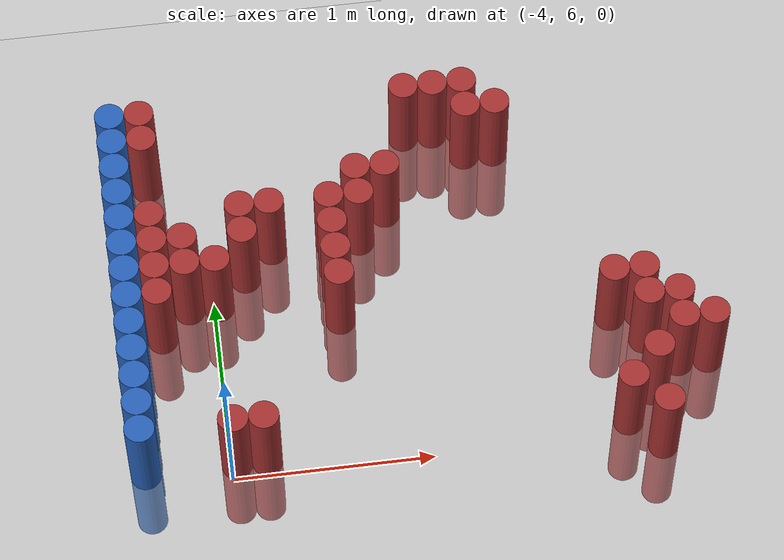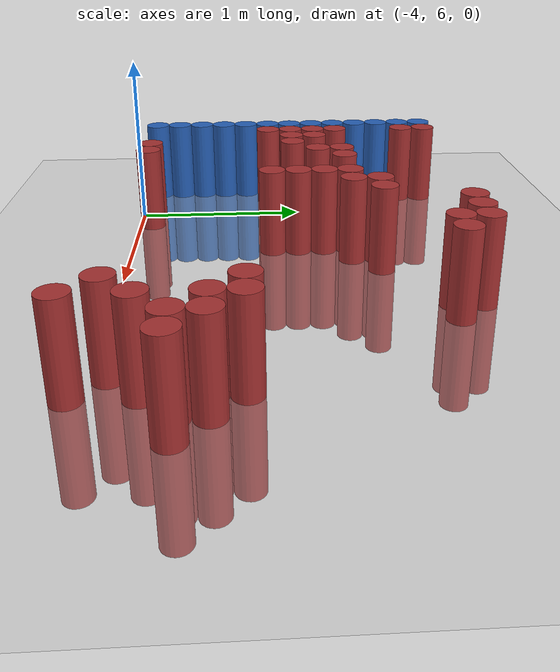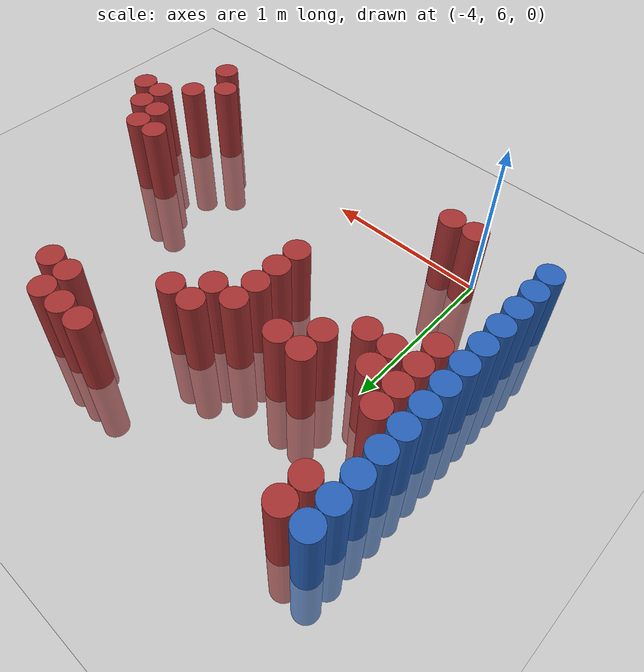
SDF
<sdf version="1.6">
 <world name="default">
  <model name="ground_plane">
   <static>1</static>
   <link name="link">
    <collision name="collision">
     <geometry><plane><normal>0 0 1</normal><size>100 100</size></plane></geometry>
     <surface><friction><ode><mu>100</mu><mu2>50</mu2></ode></friction></surface>
    </collision>
    <visual name="visual">
     <cast_shadows>0</cast_shadows>
     <geometry><plane><normal>0 0 1</normal><size>100 100</size></plane></geometry>
     <material>
      <script><uri>file://media/materials/scripts/gazebo.material</uri><name>Gazebo/Grey</name></script>
     </material>
    </visual>
   </link>
  </model>
  <model name="unit_cylinder_102">
   <static>1</static>
   <pose>-4.425000 6.075000 0.000000 0.000000 0.000000 0.000000</pose>
   <link name="link">
    <inertial>
     <mass>1</mass>
     <inertia><ixx>0.145833</ixx><ixy>0</ixy><ixz>0</ixz><iyy>0.145833</iyy><iyz>0</iyz><izz>0.125</izz></inertia>
    </inertial>
    <collision name="collision">
     <geometry><cylinder><radius>0.075000</radius><length>1</length></cylinder></geometry>
    </collision>
    <visual name="visual">
     <geometry><cylinder><radius>0.075000</radius><length>1</length></cylinder></geometry>
     <material>
      <ambient>0.152000 0.379000 0.720000 1</ambient>
      <diffuse>0.152000 0.379000 0.720000 1</diffuse>
     </material>
     <material>
      <script><name>Gazebo/Grey</name><uri>file://media/materials/scripts/gazebo.material</uri></script>
     </material>
    </visual>
   </link>
  </model>
  <model name="unit_cylinder_103">
   <static>1</static>
   <pose>-4.425000 6.225000 0.000000 0.000000 0.000000 0.000000</pose>
   <link name="link">
    <inertial>
     <mass>1</mass>
     <inertia><ixx>0.145833</ixx><ixy>0</ixy><ixz>0</ixz><iyy>0.145833</iyy><iyz>0</iyz><izz>0.125</izz></inertia>
    </inertial>
    <collision name="collision">
     <geometry><cylinder><radius>0.075000</radius><length>1</length></cylinder></geometry>
    </collision>
    <visual name="visual">
     <geometry><cylinder><radius>0.075000</radius><length>1</length></cylinder></geometry>
     <material>
      <ambient>0.152000 0.379000 0.720000 1</ambient>
      <diffuse>0.152000 0.379000 0.720000 1</diffuse>
     </material>
     <material>
      <script><name>Gazebo/Grey</name><uri>file://media/materials/scripts/gazebo.material</uri></script>
     </material>
    </visual>
   </link>
  </model>
  <model name="unit_cylinder_104">
   <static>1</static>
   <pose>-4.425000 6.375000 0.000000 0.000000 0.000000 0.000000</pose>
   <link name="link">
    <inertial>
     <mass>1</mass>
     <inertia><ixx>0.145833</ixx><ixy>0</ixy><ixz>0</ixz><iyy>0.145833</iyy><iyz>0</iyz><izz>0.125</izz></inertia>
    </inertial>
    <collision name="collision">
     <geometry><cylinder><radius>0.075000</radius><length>1</length></cylinder></geometry>
    </collision>
    <visual name="visual">
     <geometry><cylinder><radius>0.075000</radius><length>1</length></cylinder></geometry>
     <material>
      <ambient>0.152000 0.379000 0.720000 1</ambient>
      <diffuse>0.152000 0.379000 0.720000 1</diffuse>
     </material>
     <material>
      <script><name>Gazebo/Grey</name><uri>file://media/materials/scripts/gazebo.material</uri></script>
     </material>
    </visual>
   </link>
  </model>
  <model name="unit_cylinder_105">
   <static>1</static>
   <pose>-4.425000 6.525000 0.000000 0.000000 0.000000 0.000000</pose>
   <link name="link">
    <inertial>
     <mass>1</mass>
     <inertia><ixx>0.145833</ixx><ixy>0</ixy><ixz>0</ixz><iyy>0.145833</iyy><iyz>0</iyz><izz>0.125</izz></inertia>
    </inertial>
    <collision name="collision">
     <geometry><cylinder><radius>0.075000</radius><length>1</length></cylinder></geometry>
    </collision>
    <visual name="visual">
     <geometry><cylinder><radius>0.075000</radius><length>1</length></cylinder></geometry>
     <material>
      <ambient>0.152000 0.379000 0.720000 1</ambient>
      <diffuse>0.152000 0.379000 0.720000 1</diffuse>
     </material>
     <material>
      <script><name>Gazebo/Grey</name><uri>file://media/materials/scripts/gazebo.material</uri></script>
     </material>
    </visual>
   </link>
  </model>
  <model name="unit_cylinder_106">
   <static>1</static>
   <pose>-4.425000 6.675000 0.000000 0.000000 0.000000 0.000000</pose>
   <link name="link">
    <inertial>
     <mass>1</mass>
     <inertia><ixx>0.145833</ixx><ixy>0</ixy><ixz>0</ixz><iyy>0.145833</iyy><iyz>0</iyz><izz>0.125</izz></inertia>
    </inertial>
    <collision name="collision">
     <geometry><cylinder><radius>0.075000</radius><length>1</length></cylinder></geometry>
    </collision>
    <visual name="visual">
     <geometry><cylinder><radius>0.075000</radius><length>1</length></cylinder></geometry>
     <material>
      <ambient>0.152000 0.379000 0.720000 1</ambient>
      <diffuse>0.152000 0.379000 0.720000 1</diffuse>
     </material>
     <material>
      <script><name>Gazebo/Grey</name><uri>file://media/materials/scripts/gazebo.material</uri></script>
     </material>
    </visual>
   </link>
  </model>
  <model name="unit_cylinder_107">
   <static>1</static>
   <pose>-4.425000 6.825000 0.000000 0.000000 0.000000 0.000000</pose>
   <link name="link">
    <inertial>
     <mass>1</mass>
     <inertia><ixx>0.145833</ixx><ixy>0</ixy><ixz>0</ixz><iyy>0.145833</iyy><iyz>0</iyz><izz>0.125</izz></inertia>
    </inertial>
    <collision name="collision">
     <geometry><cylinder><radius>0.075000</radius><length>1</length></cylinder></geometry>
    </collision>
    <visual name="visual">
     <geometry><cylinder><radius>0.075000</radius><length>1</length></cylinder></geometry>
     <material>
      <ambient>0.152000 0.379000 0.720000 1</ambient>
      <diffuse>0.152000 0.379000 0.720000 1</diffuse>
     </material>
     <material>
      <script><name>Gazebo/Grey</name><uri>file://media/materials/scripts/gazebo.material</uri></script>
     </material>
    </visual>
   </link>
  </model>
  <model name="unit_cylinder_108">
   <static>1</static>
   <pose>-4.425000 6.975000 0.000000 0.000000 0.000000 0.000000</pose>
   <link name="link">
    <inertial>
     <mass>1</mass>
     <inertia><ixx>0.145833</ixx><ixy>0</ixy><ixz>0</ixz><iyy>0.145833</iyy><iyz>0</iyz><izz>0.125</izz></inertia>
    </inertial>
    <collision name="collision">
     <geometry><cylinder><radius>0.075000</radius><length>1</length></cylinder></geometry>
    </collision>
    <visual name="visual">
     <geometry><cylinder><radius>0.075000</radius><length>1</length></cylinder></geometry>
     <material>
      <ambient>0.152000 0.379000 0.720000 1</ambient>
      <diffuse>0.152000 0.379000 0.720000 1</diffuse>
     </material>
     <material>
      <script><name>Gazebo/Grey</name><uri>file://media/materials/scripts/gazebo.material</uri></script>
     </material>
    </visual>
   </link>
  </model>
  <model name="unit_cylinder_109">
   <static>1</static>
   <pose>-4.425000 7.125000 0.000000 0.000000 0.000000 0.000000</pose>
   <link name="link">
    <inertial>
     <mass>1</mass>
     <inertia><ixx>0.145833</ixx><ixy>0</ixy><ixz>0</ixz><iyy>0.145833</iyy><iyz>0</iyz><izz>0.125</izz></inertia>
    </inertial>
    <collision name="collision">
     <geometry><cylinder><radius>0.075000</radius><length>1</length></cylinder></geometry>
    </collision>
    <visual name="visual">
     <geometry><cylinder><radius>0.075000</radius><length>1</length></cylinder></geometry>
     <material>
      <ambient>0.152000 0.379000 0.720000 1</ambient>
      <diffuse>0.152000 0.379000 0.720000 1</diffuse>
     </material>
     <material>
      <script><name>Gazebo/Grey</name><uri>file://media/materials/scripts/gazebo.material</uri></script>
     </material>
    </visual>
   </link>
  </model>
  <model name="unit_cylinder_110">
   <static>1</static>
   <pose>-4.425000 7.275000 0.000000 0.000000 0.000000 0.000000</pose>
   <link name="link">
    <inertial>
     <mass>1</mass>
     <inertia><ixx>0.145833</ixx><ixy>0</ixy><ixz>0</ixz><iyy>0.145833</iyy><iyz>0</iyz><izz>0.125</izz></inertia>
    </inertial>
    <collision name="collision">
     <geometry><cylinder><radius>0.075000</radius><length>1</length></cylinder></geometry>
    </collision>
    <visual name="visual">
     <geometry><cylinder><radius>0.075000</radius><length>1</length></cylinder></geometry>
     <material>
      <ambient>0.152000 0.379000 0.720000 1</ambient>
      <diffuse>0.152000 0.379000 0.720000 1</diffuse>
     </material>
     <material>
      <script><name>Gazebo/Grey</name><uri>file://media/materials/scripts/gazebo.material</uri></script>
     </material>
    </visual>
   </link>
  </model>
  <model name="unit_cylinder_111">
   <static>1</static>
   <pose>-4.425000 7.425000 0.000000 0.000000 0.000000 0.000000</pose>
   <link name="link">
    <inertial>
     <mass>1</mass>
     <inertia><ixx>0.145833</ixx><ixy>0</ixy><ixz>0</ixz><iyy>0.145833</iyy><iyz>0</iyz><izz>0.125</izz></inertia>
    </inertial>
    <collision name="collision">
     <geometry><cylinder><radius>0.075000</radius><length>1</length></cylinder></geometry>
    </collision>
    <visual name="visual">
     <geometry><cylinder><radius>0.075000</radius><length>1</length></cylinder></geometry>
     <material>
      <ambient>0.152000 0.379000 0.720000 1</ambient>
      <diffuse>0.152000 0.379000 0.720000 1</diffuse>
     </material>
     <material>
      <script><name>Gazebo/Grey</name><uri>file://media/materials/scripts/gazebo.material</uri></script>
     </material>
    </visual>
   </link>
  </model>
  <model name="unit_cylinder_112">
   <static>1</static>
   <pose>-4.425000 7.575000 0.000000 0.000000 0.000000 0.000000</pose>
   <link name="link">
    <inertial>
     <mass>1</mass>
     <inertia><ixx>0.145833</ixx><ixy>0</ixy><ixz>0</ixz><iyy>0.145833</iyy><iyz>0</iyz><izz>0.125</izz></inertia>
    </inertial>
    <collision name="collision">
     <geometry><cylinder><radius>0.075000</radius><length>1</length></cylinder></geometry>
    </collision>
    <visual name="visual">
     <geometry><cylinder><radius>0.075000</radius><length>1</length></cylinder></geometry>
     <material>
      <ambient>0.152000 0.379000 0.720000 1</ambient>
      <diffuse>0.152000 0.379000 0.720000 1</diffuse>
     </material>
     <material>
      <script><name>Gazebo/Grey</name><uri>file://media/materials/scripts/gazebo.material</uri></script>
     </material>
    </visual>
   </link>
  </model>
  <model name="unit_cylinder_113">
   <static>1</static>
   <pose>-4.425000 7.725000 0.000000 0.000000 0.000000 0.000000</pose>
   <link name="link">
    <inertial>
     <mass>1</mass>
     <inertia><ixx>0.145833</ixx><ixy>0</ixy><ixz>0</ixz><iyy>0.145833</iyy><iyz>0</iyz><izz>0.125</izz></inertia>
    </inertial>
    <collision name="collision">
     <geometry><cylinder><radius>0.075000</radius><length>1</length></cylinder></geometry>
    </collision>
    <visual name="visual">
     <geometry><cylinder><radius>0.075000</radius><length>1</length></cylinder></geometry>
     <material>
      <ambient>0.152000 0.379000 0.720000 1</ambient>
      <diffuse>0.152000 0.379000 0.720000 1</diffuse>
     </material>
     <material>
      <script><name>Gazebo/Grey</name><uri>file://media/materials/scripts/gazebo.material</uri></script>
     </material>
    </visual>
   </link>
  </model>
  <model name="unit_cylinder_114">
   <static>1</static>
   <pose>-4.425000 7.875000 0.000000 0.000000 0.000000 0.000000</pose>
   <link name="link">
    <inertial>
     <mass>1</mass>
     <inertia><ixx>0.145833</ixx><ixy>0</ixy><ixz>0</ixz><iyy>0.145833</iyy><iyz>0</iyz><izz>0.125</izz></inertia>
    </inertial>
    <collision name="collision">
     <geometry><cylinder><radius>0.075000</radius><length>1</length></cylinder></geometry>
    </collision>
    <visual name="visual">
     <geometry><cylinder><radius>0.075000</radius><length>1</length></cylinder></geometry>
     <material>
      <ambient>0.152000 0.379000 0.720000 1</ambient>
      <diffuse>0.152000 0.379000 0.720000 1</diffuse>
     </material>
     <material>
      <script><name>Gazebo/Grey</name><uri>file://media/materials/scripts/gazebo.material</uri></script>
     </material>
    </visual>
   </link>
  </model>
  <model name="unit_cylinder_129">
   <static>1</static>
   <pose>-4.275000 6.825000 0.000000 0.000000 0.000000 0.000000</pose>
   <link name="link">
    <inertial>
     <mass>1</mass>
     <inertia><ixx>0.145833</ixx><ixy>0</ixy><ixz>0</ixz><iyy>0.145833</iyy><iyz>0</iyz><izz>0.125</izz></inertia>
    </inertial>
    <collision name="collision">
     <geometry><cylinder><radius>0.075000</radius><length>1</length></cylinder></geometry>
    </collision>
    <visual name="visual">
     <geometry><cylinder><radius>0.075000</radius><length>1</length></cylinder></geometry>
     <material>
      <ambient>0.648000 0.192000 0.192000 1</ambient>
      <diffuse>0.648000 0.192000 0.192000 1</diffuse>
     </material>
     <material>
      <script><name>Gazebo/Grey</name><uri>file://media/materials/scripts/gazebo.material</uri></script>
     </material>
    </visual>
   </link>
  </model>
  <model name="unit_cylinder_130">
   <static>1</static>
   <pose>-4.275000 6.975000 0.000000 0.000000 0.000000 0.000000</pose>
   <link name="link">
    <inertial>
     <mass>1</mass>
     <inertia><ixx>0.145833</ixx><ixy>0</ixy><ixz>0</ixz><iyy>0.145833</iyy><iyz>0</iyz><izz>0.125</izz></inertia>
    </inertial>
    <collision name="collision">
     <geometry><cylinder><radius>0.075000</radius><length>1</length></cylinder></geometry>
    </collision>
    <visual name="visual">
     <geometry><cylinder><radius>0.075000</radius><length>1</length></cylinder></geometry>
     <material>
      <ambient>0.648000 0.192000 0.192000 1</ambient>
      <diffuse>0.648000 0.192000 0.192000 1</diffuse>
     </material>
     <material>
      <script><name>Gazebo/Grey</name><uri>file://media/materials/scripts/gazebo.material</uri></script>
     </material>
    </visual>
   </link>
  </model>
  <model name="unit_cylinder_131">
   <static>1</static>
   <pose>-4.275000 7.125000 0.000000 0.000000 0.000000 0.000000</pose>
   <link name="link">
    <inertial>
     <mass>1</mass>
     <inertia><ixx>0.145833</ixx><ixy>0</ixy><ixz>0</ixz><iyy>0.145833</iyy><iyz>0</iyz><izz>0.125</izz></inertia>
    </inertial>
    <collision name="collision">
     <geometry><cylinder><radius>0.075000</radius><length>1</length></cylinder></geometry>
    </collision>
    <visual name="visual">
     <geometry><cylinder><radius>0.075000</radius><length>1</length></cylinder></geometry>
     <material>
      <ambient>0.648000 0.192000 0.192000 1</ambient>
      <diffuse>0.648000 0.192000 0.192000 1</diffuse>
     </material>
     <material>
      <script><name>Gazebo/Grey</name><uri>file://media/materials/scripts/gazebo.material</uri></script>
     </material>
    </visual>
   </link>
  </model>
  <model name="unit_cylinder_132">
   <static>1</static>
   <pose>-4.275000 7.275000 0.000000 0.000000 0.000000 0.000000</pose>
   <link name="link">
    <inertial>
     <mass>1</mass>
     <inertia><ixx>0.145833</ixx><ixy>0</ixy><ixz>0</ixz><iyy>0.145833</iyy><iyz>0</iyz><izz>0.125</izz></inertia>
    </inertial>
    <collision name="collision">
     <geometry><cylinder><radius>0.075000</radius><length>1</length></cylinder></geometry>
    </collision>
    <visual name="visual">
     <geometry><cylinder><radius>0.075000</radius><length>1</length></cylinder></geometry>
     <material>
      <ambient>0.648000 0.192000 0.192000 1</ambient>
      <diffuse>0.648000 0.192000 0.192000 1</diffuse>
     </material>
     <material>
      <script><name>Gazebo/Grey</name><uri>file://media/materials/scripts/gazebo.material</uri></script>
     </material>
    </visual>
   </link>
  </model>
  <model name="unit_cylinder_133">
   <static>1</static>
   <pose>-4.275000 7.725000 0.000000 0.000000 0.000000 0.000000</pose>
   <link name="link">
    <inertial>
     <mass>1</mass>
     <inertia><ixx>0.145833</ixx><ixy>0</ixy><ixz>0</ixz><iyy>0.145833</iyy><iyz>0</iyz><izz>0.125</izz></inertia>
    </inertial>
    <collision name="collision">
     <geometry><cylinder><radius>0.075000</radius><length>1</length></cylinder></geometry>
    </collision>
    <visual name="visual">
     <geometry><cylinder><radius>0.075000</radius><length>1</length></cylinder></geometry>
     <material>
      <ambient>0.648000 0.192000 0.192000 1</ambient>
      <diffuse>0.648000 0.192000 0.192000 1</diffuse>
     </material>
     <material>
      <script><name>Gazebo/Grey</name><uri>file://media/materials/scripts/gazebo.material</uri></script>
     </material>
    </visual>
   </link>
  </model>
  <model name="unit_cylinder_134">
   <static>1</static>
   <pose>-4.275000 7.875000 0.000000 0.000000 0.000000 0.000000</pose>
   <link name="link">
    <inertial>
     <mass>1</mass>
     <inertia><ixx>0.145833</ixx><ixy>0</ixy><ixz>0</ixz><iyy>0.145833</iyy><iyz>0</iyz><izz>0.125</izz></inertia>
    </inertial>
    <collision name="collision">
     <geometry><cylinder><radius>0.075000</radius><length>1</length></cylinder></geometry>
    </collision>
    <visual name="visual">
     <geometry><cylinder><radius>0.075000</radius><length>1</length></cylinder></geometry>
     <material>
      <ambient>0.648000 0.192000 0.192000 1</ambient>
      <diffuse>0.648000 0.192000 0.192000 1</diffuse>
     </material>
     <material>
      <script><name>Gazebo/Grey</name><uri>file://media/materials/scripts/gazebo.material</uri></script>
     </material>
    </visual>
   </link>
  </model>
  <model name="unit_cylinder_140">
   <static>1</static>
   <pose>-4.125000 6.975000 0.000000 0.000000 0.000000 0.000000</pose>
   <link name="link">
    <inertial>
     <mass>1</mass>
     <inertia><ixx>0.145833</ixx><ixy>0</ixy><ixz>0</ixz><iyy>0.145833</iyy><iyz>0</iyz><izz>0.125</izz></inertia>
    </inertial>
    <collision name="collision">
     <geometry><cylinder><radius>0.075000</radius><length>1</length></cylinder></geometry>
    </collision>
    <visual name="visual">
     <geometry><cylinder><radius>0.075000</radius><length>1</length></cylinder></geometry>
     <material>
      <ambient>0.648000 0.192000 0.192000 1</ambient>
      <diffuse>0.648000 0.192000 0.192000 1</diffuse>
     </material>
     <material>
      <script><name>Gazebo/Grey</name><uri>file://media/materials/scripts/gazebo.material</uri></script>
     </material>
    </visual>
   </link>
  </model>
  <model name="unit_cylinder_141">
   <static>1</static>
   <pose>-4.125000 7.125000 0.000000 0.000000 0.000000 0.000000</pose>
   <link name="link">
    <inertial>
     <mass>1</mass>
     <inertia><ixx>0.145833</ixx><ixy>0</ixy><ixz>0</ixz><iyy>0.145833</iyy><iyz>0</iyz><izz>0.125</izz></inertia>
    </inertial>
    <collision name="collision">
     <geometry><cylinder><radius>0.075000</radius><length>1</length></cylinder></geometry>
    </collision>
    <visual name="visual">
     <geometry><cylinder><radius>0.075000</radius><length>1</length></cylinder></geometry>
     <material>
      <ambient>0.648000 0.192000 0.192000 1</ambient>
      <diffuse>0.648000 0.192000 0.192000 1</diffuse>
     </material>
     <material>
      <script><name>Gazebo/Grey</name><uri>file://media/materials/scripts/gazebo.material</uri></script>
     </material>
    </visual>
   </link>
  </model>
  <model name="unit_cylinder_147">
   <static>1</static>
   <pose>-3.975000 6.075000 0.000000 0.000000 0.000000 0.000000</pose>
   <link name="link">
    <inertial>
     <mass>1</mass>
     <inertia><ixx>0.145833</ixx><ixy>0</ixy><ixz>0</ixz><iyy>0.145833</iyy><iyz>0</iyz><izz>0.125</izz></inertia>
    </inertial>
    <collision name="collision">
     <geometry><cylinder><radius>0.075000</radius><length>1</length></cylinder></geometry>
    </collision>
    <visual name="visual">
     <geometry><cylinder><radius>0.075000</radius><length>1</length></cylinder></geometry>
     <material>
      <ambient>0.648000 0.192000 0.192000 1</ambient>
      <diffuse>0.648000 0.192000 0.192000 1</diffuse>
     </material>
     <material>
      <script><name>Gazebo/Grey</name><uri>file://media/materials/scripts/gazebo.material</uri></script>
     </material>
    </visual>
   </link>
  </model>
  <model name="unit_cylinder_148">
   <static>1</static>
   <pose>-3.975000 6.975000 0.000000 0.000000 0.000000 0.000000</pose>
   <link name="link">
    <inertial>
     <mass>1</mass>
     <inertia><ixx>0.145833</ixx><ixy>0</ixy><ixz>0</ixz><iyy>0.145833</iyy><iyz>0</iyz><izz>0.125</izz></inertia>
    </inertial>
    <collision name="collision">
     <geometry><cylinder><radius>0.075000</radius><length>1</length></cylinder></geometry>
    </collision>
    <visual name="visual">
     <geometry><cylinder><radius>0.075000</radius><length>1</length></cylinder></geometry>
     <material>
      <ambient>0.648000 0.192000 0.192000 1</ambient>
      <diffuse>0.648000 0.192000 0.192000 1</diffuse>
     </material>
     <material>
      <script><name>Gazebo/Grey</name><uri>file://media/materials/scripts/gazebo.material</uri></script>
     </material>
    </visual>
   </link>
  </model>
  <model name="unit_cylinder_154">
   <static>1</static>
   <pose>-3.825000 6.075000 0.000000 0.000000 0.000000 0.000000</pose>
   <link name="link">
    <inertial>
     <mass>1</mass>
     <inertia><ixx>0.145833</ixx><ixy>0</ixy><ixz>0</ixz><iyy>0.145833</iyy><iyz>0</iyz><izz>0.125</izz></inertia>
    </inertial>
    <collision name="collision">
     <geometry><cylinder><radius>0.075000</radius><length>1</length></cylinder></geometry>
    </collision>
    <visual name="visual">
     <geometry><cylinder><radius>0.075000</radius><length>1</length></cylinder></geometry>
     <material>
      <ambient>0.648000 0.192000 0.192000 1</ambient>
      <diffuse>0.648000 0.192000 0.192000 1</diffuse>
     </material>
     <material>
      <script><name>Gazebo/Grey</name><uri>file://media/materials/scripts/gazebo.material</uri></script>
     </material>
    </visual>
   </link>
  </model>
  <model name="unit_cylinder_155">
   <static>1</static>
   <pose>-3.825000 7.125000 0.000000 0.000000 0.000000 0.000000</pose>
   <link name="link">
    <inertial>
     <mass>1</mass>
     <inertia><ixx>0.145833</ixx><ixy>0</ixy><ixz>0</ixz><iyy>0.145833</iyy><iyz>0</iyz><izz>0.125</izz></inertia>
    </inertial>
    <collision name="collision">
     <geometry><cylinder><radius>0.075000</radius><length>1</length></cylinder></geometry>
    </collision>
    <visual name="visual">
     <geometry><cylinder><radius>0.075000</radius><length>1</length></cylinder></geometry>
     <material>
      <ambient>0.648000 0.192000 0.192000 1</ambient>
      <diffuse>0.648000 0.192000 0.192000 1</diffuse>
     </material>
     <material>
      <script><name>Gazebo/Grey</name><uri>file://media/materials/scripts/gazebo.material</uri></script>
     </material>
    </visual>
   </link>
  </model>
  <model name="unit_cylinder_156">
   <static>1</static>
   <pose>-3.825000 7.275000 0.000000 0.000000 0.000000 0.000000</pose>
   <link name="link">
    <inertial>
     <mass>1</mass>
     <inertia><ixx>0.145833</ixx><ixy>0</ixy><ixz>0</ixz><iyy>0.145833</iyy><iyz>0</iyz><izz>0.125</izz></inertia>
    </inertial>
    <collision name="collision">
     <geometry><cylinder><radius>0.075000</radius><length>1</length></cylinder></geometry>
    </collision>
    <visual name="visual">
     <geometry><cylinder><radius>0.075000</radius><length>1</length></cylinder></geometry>
     <material>
      <ambient>0.648000 0.192000 0.192000 1</ambient>
      <diffuse>0.648000 0.192000 0.192000 1</diffuse>
     </material>
     <material>
      <script><name>Gazebo/Grey</name><uri>file://media/materials/scripts/gazebo.material</uri></script>
     </material>
    </visual>
   </link>
  </model>
  <model name="unit_cylinder_161">
   <static>1</static>
   <pose>-3.675000 7.275000 0.000000 0.000000 0.000000 0.000000</pose>
   <link name="link">
    <inertial>
     <mass>1</mass>
     <inertia><ixx>0.145833</ixx><ixy>0</ixy><ixz>0</ixz><iyy>0.145833</iyy><iyz>0</iyz><izz>0.125</izz></inertia>
    </inertial>
    <collision name="collision">
     <geometry><cylinder><radius>0.075000</radius><length>1</length></cylinder></geometry>
    </collision>
    <visual name="visual">
     <geometry><cylinder><radius>0.075000</radius><length>1</length></cylinder></geometry>
     <material>
      <ambient>0.648000 0.192000 0.192000 1</ambient>
      <diffuse>0.648000 0.192000 0.192000 1</diffuse>
     </material>
     <material>
      <script><name>Gazebo/Grey</name><uri>file://media/materials/scripts/gazebo.material</uri></script>
     </material>
    </visual>
   </link>
  </model>
  <model name="unit_cylinder_172">
   <static>1</static>
   <pose>-3.375000 6.825000 0.000000 0.000000 0.000000 0.000000</pose>
   <link name="link">
    <inertial>
     <mass>1</mass>
     <inertia><ixx>0.145833</ixx><ixy>0</ixy><ixz>0</ixz><iyy>0.145833</iyy><iyz>0</iyz><izz>0.125</izz></inertia>
    </inertial>
    <collision name="collision">
     <geometry><cylinder><radius>0.075000</radius><length>1</length></cylinder></geometry>
    </collision>
    <visual name="visual">
     <geometry><cylinder><radius>0.075000</radius><length>1</length></cylinder></geometry>
     <material>
      <ambient>0.648000 0.192000 0.192000 1</ambient>
      <diffuse>0.648000 0.192000 0.192000 1</diffuse>
     </material>
     <material>
      <script><name>Gazebo/Grey</name><uri>file://media/materials/scripts/gazebo.material</uri></script>
     </material>
    </visual>
   </link>
  </model>
  <model name="unit_cylinder_173">
   <static>1</static>
   <pose>-3.375000 6.975000 0.000000 0.000000 0.000000 0.000000</pose>
   <link name="link">
    <inertial>
     <mass>1</mass>
     <inertia><ixx>0.145833</ixx><ixy>0</ixy><ixz>0</ixz><iyy>0.145833</iyy><iyz>0</iyz><izz>0.125</izz></inertia>
    </inertial>
    <collision name="collision">
     <geometry><cylinder><radius>0.075000</radius><length>1</length></cylinder></geometry>
    </collision>
    <visual name="visual">
     <geometry><cylinder><radius>0.075000</radius><length>1</length></cylinder></geometry>
     <material>
      <ambient>0.648000 0.192000 0.192000 1</ambient>
      <diffuse>0.648000 0.192000 0.192000 1</diffuse>
     </material>
     <material>
      <script><name>Gazebo/Grey</name><uri>file://media/materials/scripts/gazebo.material</uri></script>
     </material>
    </visual>
   </link>
  </model>
  <model name="unit_cylinder_174">
   <static>1</static>
   <pose>-3.375000 7.125000 0.000000 0.000000 0.000000 0.000000</pose>
   <link name="link">
    <inertial>
     <mass>1</mass>
     <inertia><ixx>0.145833</ixx><ixy>0</ixy><ixz>0</ixz><iyy>0.145833</iyy><iyz>0</iyz><izz>0.125</izz></inertia>
    </inertial>
    <collision name="collision">
     <geometry><cylinder><radius>0.075000</radius><length>1</length></cylinder></geometry>
    </collision>
    <visual name="visual">
     <geometry><cylinder><radius>0.075000</radius><length>1</length></cylinder></geometry>
     <material>
      <ambient>0.648000 0.192000 0.192000 1</ambient>
      <diffuse>0.648000 0.192000 0.192000 1</diffuse>
     </material>
     <material>
      <script><name>Gazebo/Grey</name><uri>file://media/materials/scripts/gazebo.material</uri></script>
     </material>
    </visual>
   </link>
  </model>
  <model name="unit_cylinder_175">
   <static>1</static>
   <pose>-3.375000 7.275000 0.000000 0.000000 0.000000 0.000000</pose>
   <link name="link">
    <inertial>
     <mass>1</mass>
     <inertia><ixx>0.145833</ixx><ixy>0</ixy><ixz>0</ixz><iyy>0.145833</iyy><iyz>0</iyz><izz>0.125</izz></inertia>
    </inertial>
    <collision name="collision">
     <geometry><cylinder><radius>0.075000</radius><length>1</length></cylinder></geometry>
    </collision>
    <visual name="visual">
     <geometry><cylinder><radius>0.075000</radius><length>1</length></cylinder></geometry>
     <material>
      <ambient>0.648000 0.192000 0.192000 1</ambient>
      <diffuse>0.648000 0.192000 0.192000 1</diffuse>
     </material>
     <material>
      <script><name>Gazebo/Grey</name><uri>file://media/materials/scripts/gazebo.material</uri></script>
     </material>
    </visual>
   </link>
  </model>
  <model name="unit_cylinder_180">
   <static>1</static>
   <pose>-3.225000 7.275000 0.000000 0.000000 0.000000 0.000000</pose>
   <link name="link">
    <inertial>
     <mass>1</mass>
     <inertia><ixx>0.145833</ixx><ixy>0</ixy><ixz>0</ixz><iyy>0.145833</iyy><iyz>0</iyz><izz>0.125</izz></inertia>
    </inertial>
    <collision name="collision">
     <geometry><cylinder><radius>0.075000</radius><length>1</length></cylinder></geometry>
    </collision>
    <visual name="visual">
     <geometry><cylinder><radius>0.075000</radius><length>1</length></cylinder></geometry>
     <material>
      <ambient>0.648000 0.192000 0.192000 1</ambient>
      <diffuse>0.648000 0.192000 0.192000 1</diffuse>
     </material>
     <material>
      <script><name>Gazebo/Grey</name><uri>file://media/materials/scripts/gazebo.material</uri></script>
     </material>
    </visual>
   </link>
  </model>
  <model name="unit_cylinder_181">
   <static>1</static>
   <pose>-3.225000 7.425000 0.000000 0.000000 0.000000 0.000000</pose>
   <link name="link">
    <inertial>
     <mass>1</mass>
     <inertia><ixx>0.145833</ixx><ixy>0</ixy><ixz>0</ixz><iyy>0.145833</iyy><iyz>0</iyz><izz>0.125</izz></inertia>
    </inertial>
    <collision name="collision">
     <geometry><cylinder><radius>0.075000</radius><length>1</length></cylinder></geometry>
    </collision>
    <visual name="visual">
     <geometry><cylinder><radius>0.075000</radius><length>1</length></cylinder></geometry>
     <material>
      <ambient>0.648000 0.192000 0.192000 1</ambient>
      <diffuse>0.648000 0.192000 0.192000 1</diffuse>
     </material>
     <material>
      <script><name>Gazebo/Grey</name><uri>file://media/materials/scripts/gazebo.material</uri></script>
     </material>
    </visual>
   </link>
  </model>
  <model name="unit_cylinder_182">
   <static>1</static>
   <pose>-3.075000 7.425000 0.000000 0.000000 0.000000 0.000000</pose>
   <link name="link">
    <inertial>
     <mass>1</mass>
     <inertia><ixx>0.145833</ixx><ixy>0</ixy><ixz>0</ixz><iyy>0.145833</iyy><iyz>0</iyz><izz>0.125</izz></inertia>
    </inertial>
    <collision name="collision">
     <geometry><cylinder><radius>0.075000</radius><length>1</length></cylinder></geometry>
    </collision>
    <visual name="visual">
     <geometry><cylinder><radius>0.075000</radius><length>1</length></cylinder></geometry>
     <material>
      <ambient>0.648000 0.192000 0.192000 1</ambient>
      <diffuse>0.648000 0.192000 0.192000 1</diffuse>
     </material>
     <material>
      <script><name>Gazebo/Grey</name><uri>file://media/materials/scripts/gazebo.material</uri></script>
     </material>
    </visual>
   </link>
  </model>
  <model name="unit_cylinder_183">
   <static>1</static>
   <pose>-2.925000 7.875000 0.000000 0.000000 0.000000 0.000000</pose>
   <link name="link">
    <inertial>
     <mass>1</mass>
     <inertia><ixx>0.145833</ixx><ixy>0</ixy><ixz>0</ixz><iyy>0.145833</iyy><iyz>0</iyz><izz>0.125</izz></inertia>
    </inertial>
    <collision name="collision">
     <geometry><cylinder><radius>0.075000</radius><length>1</length></cylinder></geometry>
    </collision>
    <visual name="visual">
     <geometry><cylinder><radius>0.075000</radius><length>1</length></cylinder></geometry>
     <material>
      <ambient>0.648000 0.192000 0.192000 1</ambient>
      <diffuse>0.648000 0.192000 0.192000 1</diffuse>
     </material>
     <material>
      <script><name>Gazebo/Grey</name><uri>file://media/materials/scripts/gazebo.material</uri></script>
     </material>
    </visual>
   </link>
  </model>
  <model name="unit_cylinder_188">
   <static>1</static>
   <pose>-2.775000 7.875000 0.000000 0.000000 0.000000 0.000000</pose>
   <link name="link">
    <inertial>
     <mass>1</mass>
     <inertia><ixx>0.145833</ixx><ixy>0</ixy><ixz>0</ixz><iyy>0.145833</iyy><iyz>0</iyz><izz>0.125</izz></inertia>
    </inertial>
    <collision name="collision">
     <geometry><cylinder><radius>0.075000</radius><length>1</length></cylinder></geometry>
    </collision>
    <visual name="visual">
     <geometry><cylinder><radius>0.075000</radius><length>1</length></cylinder></geometry>
     <material>
      <ambient>0.648000 0.192000 0.192000 1</ambient>
      <diffuse>0.648000 0.192000 0.192000 1</diffuse>
     </material>
     <material>
      <script><name>Gazebo/Grey</name><uri>file://media/materials/scripts/gazebo.material</uri></script>
     </material>
    </visual>
   </link>
  </model>
  <model name="unit_cylinder_195">
   <static>1</static>
   <pose>-2.625000 7.725000 0.000000 0.000000 0.000000 0.000000</pose>
   <link name="link">
    <inertial>
     <mass>1</mass>
     <inertia><ixx>0.145833</ixx><ixy>0</ixy><ixz>0</ixz><iyy>0.145833</iyy><iyz>0</iyz><izz>0.125</izz></inertia>
    </inertial>
    <collision name="collision">
     <geometry><cylinder><radius>0.075000</radius><length>1</length></cylinder></geometry>
    </collision>
    <visual name="visual">
     <geometry><cylinder><radius>0.075000</radius><length>1</length></cylinder></geometry>
     <material>
      <ambient>0.648000 0.192000 0.192000 1</ambient>
      <diffuse>0.648000 0.192000 0.192000 1</diffuse>
     </material>
     <material>
      <script><name>Gazebo/Grey</name><uri>file://media/materials/scripts/gazebo.material</uri></script>
     </material>
    </visual>
   </link>
  </model>
  <model name="unit_cylinder_196">
   <static>1</static>
   <pose>-2.625000 7.875000 0.000000 0.000000 0.000000 0.000000</pose>
   <link name="link">
    <inertial>
     <mass>1</mass>
     <inertia><ixx>0.145833</ixx><ixy>0</ixy><ixz>0</ixz><iyy>0.145833</iyy><iyz>0</iyz><izz>0.125</izz></inertia>
    </inertial>
    <collision name="collision">
     <geometry><cylinder><radius>0.075000</radius><length>1</length></cylinder></geometry>
    </collision>
    <visual name="visual">
     <geometry><cylinder><radius>0.075000</radius><length>1</length></cylinder></geometry>
     <material>
      <ambient>0.648000 0.192000 0.192000 1</ambient>
      <diffuse>0.648000 0.192000 0.192000 1</diffuse>
     </material>
     <material>
      <script><name>Gazebo/Grey</name><uri>file://media/materials/scripts/gazebo.material</uri></script>
     </material>
    </visual>
   </link>
  </model>
  <model name="unit_cylinder_203">
   <static>1</static>
   <pose>-2.475000 7.725000 0.000000 0.000000 0.000000 0.000000</pose>
   <link name="link">
    <inertial>
     <mass>1</mass>
     <inertia><ixx>0.145833</ixx><ixy>0</ixy><ixz>0</ixz><iyy>0.145833</iyy><iyz>0</iyz><izz>0.125</izz></inertia>
    </inertial>
    <collision name="collision">
     <geometry><cylinder><radius>0.075000</radius><length>1</length></cylinder></geometry>
    </collision>
    <visual name="visual">
     <geometry><cylinder><radius>0.075000</radius><length>1</length></cylinder></geometry>
     <material>
      <ambient>0.648000 0.192000 0.192000 1</ambient>
      <diffuse>0.648000 0.192000 0.192000 1</diffuse>
     </material>
     <material>
      <script><name>Gazebo/Grey</name><uri>file://media/materials/scripts/gazebo.material</uri></script>
     </material>
    </visual>
   </link>
  </model>
  <model name="unit_cylinder_216">
   <static>1</static>
   <pose>-2.025000 6.075000 0.000000 0.000000 0.000000 0.000000</pose>
   <link name="link">
    <inertial>
     <mass>1</mass>
     <inertia><ixx>0.145833</ixx><ixy>0</ixy><ixz>0</ixz><iyy>0.145833</iyy><iyz>0</iyz><izz>0.125</izz></inertia>
    </inertial>
    <collision name="collision">
     <geometry><cylinder><radius>0.075000</radius><length>1</length></cylinder></geometry>
    </collision>
    <visual name="visual">
     <geometry><cylinder><radius>0.075000</radius><length>1</length></cylinder></geometry>
     <material>
      <ambient>0.648000 0.192000 0.192000 1</ambient>
      <diffuse>0.648000 0.192000 0.192000 1</diffuse>
     </material>
     <material>
      <script><name>Gazebo/Grey</name><uri>file://media/materials/scripts/gazebo.material</uri></script>
     </material>
    </visual>
   </link>
  </model>
  <model name="unit_cylinder_217">
   <static>1</static>
   <pose>-2.025000 6.675000 0.000000 0.000000 0.000000 0.000000</pose>
   <link name="link">
    <inertial>
     <mass>1</mass>
     <inertia><ixx>0.145833</ixx><ixy>0</ixy><ixz>0</ixz><iyy>0.145833</iyy><iyz>0</iyz><izz>0.125</izz></inertia>
    </inertial>
    <collision name="collision">
     <geometry><cylinder><radius>0.075000</radius><length>1</length></cylinder></geometry>
    </collision>
    <visual name="visual">
     <geometry><cylinder><radius>0.075000</radius><length>1</length></cylinder></geometry>
     <material>
      <ambient>0.648000 0.192000 0.192000 1</ambient>
      <diffuse>0.648000 0.192000 0.192000 1</diffuse>
     </material>
     <material>
      <script><name>Gazebo/Grey</name><uri>file://media/materials/scripts/gazebo.material</uri></script>
     </material>
    </visual>
   </link>
  </model>
  <model name="unit_cylinder_220">
   <static>1</static>
   <pose>-1.875000 5.925000 0.000000 0.000000 0.000000 0.000000</pose>
   <link name="link">
    <inertial>
     <mass>1</mass>
     <inertia><ixx>0.145833</ixx><ixy>0</ixy><ixz>0</ixz><iyy>0.145833</iyy><iyz>0</iyz><izz>0.125</izz></inertia>
    </inertial>
    <collision name="collision">
     <geometry><cylinder><radius>0.075000</radius><length>1</length></cylinder></geometry>
    </collision>
    <visual name="visual">
     <geometry><cylinder><radius>0.075000</radius><length>1</length></cylinder></geometry>
     <material>
      <ambient>0.648000 0.192000 0.192000 1</ambient>
      <diffuse>0.648000 0.192000 0.192000 1</diffuse>
     </material>
     <material>
      <script><name>Gazebo/Grey</name><uri>file://media/materials/scripts/gazebo.material</uri></script>
     </material>
    </visual>
   </link>
  </model>
  <model name="unit_cylinder_221">
   <static>1</static>
   <pose>-1.875000 6.225000 0.000000 0.000000 0.000000 0.000000</pose>
   <link name="link">
    <inertial>
     <mass>1</mass>
     <inertia><ixx>0.145833</ixx><ixy>0</ixy><ixz>0</ixz><iyy>0.145833</iyy><iyz>0</iyz><izz>0.125</izz></inertia>
    </inertial>
    <collision name="collision">
     <geometry><cylinder><radius>0.075000</radius><length>1</length></cylinder></geometry>
    </collision>
    <visual name="visual">
     <geometry><cylinder><radius>0.075000</radius><length>1</length></cylinder></geometry>
     <material>
      <ambient>0.648000 0.192000 0.192000 1</ambient>
      <diffuse>0.648000 0.192000 0.192000 1</diffuse>
     </material>
     <material>
      <script><name>Gazebo/Grey</name><uri>file://media/materials/scripts/gazebo.material</uri></script>
     </material>
    </visual>
   </link>
  </model>
  <model name="unit_cylinder_222">
   <static>1</static>
   <pose>-1.875000 6.525000 0.000000 0.000000 0.000000 0.000000</pose>
   <link name="link">
    <inertial>
     <mass>1</mass>
     <inertia><ixx>0.145833</ixx><ixy>0</ixy><ixz>0</ixz><iyy>0.145833</iyy><iyz>0</iyz><izz>0.125</izz></inertia>
    </inertial>
    <collision name="collision">
     <geometry><cylinder><radius>0.075000</radius><length>1</length></cylinder></geometry>
    </collision>
    <visual name="visual">
     <geometry><cylinder><radius>0.075000</radius><length>1</length></cylinder></geometry>
     <material>
      <ambient>0.648000 0.192000 0.192000 1</ambient>
      <diffuse>0.648000 0.192000 0.192000 1</diffuse>
     </material>
     <material>
      <script><name>Gazebo/Grey</name><uri>file://media/materials/scripts/gazebo.material</uri></script>
     </material>
    </visual>
   </link>
  </model>
  <model name="unit_cylinder_223">
   <static>1</static>
   <pose>-1.875000 6.675000 0.000000 0.000000 0.000000 0.000000</pose>
   <link name="link">
    <inertial>
     <mass>1</mass>
     <inertia><ixx>0.145833</ixx><ixy>0</ixy><ixz>0</ixz><iyy>0.145833</iyy><iyz>0</iyz><izz>0.125</izz></inertia>
    </inertial>
    <collision name="collision">
     <geometry><cylinder><radius>0.075000</radius><length>1</length></cylinder></geometry>
    </collision>
    <visual name="visual">
     <geometry><cylinder><radius>0.075000</radius><length>1</length></cylinder></geometry>
     <material>
      <ambient>0.648000 0.192000 0.192000 1</ambient>
      <diffuse>0.648000 0.192000 0.192000 1</diffuse>
     </material>
     <material>
      <script><name>Gazebo/Grey</name><uri>file://media/materials/scripts/gazebo.material</uri></script>
     </material>
    </visual>
   </link>
  </model>
  <model name="unit_cylinder_224">
   <static>1</static>
   <pose>-1.725000 6.375000 0.000000 0.000000 0.000000 0.000000</pose>
   <link name="link">
    <inertial>
     <mass>1</mass>
     <inertia><ixx>0.145833</ixx><ixy>0</ixy><ixz>0</ixz><iyy>0.145833</iyy><iyz>0</iyz><izz>0.125</izz></inertia>
    </inertial>
    <collision name="collision">
     <geometry><cylinder><radius>0.075000</radius><length>1</length></cylinder></geometry>
    </collision>
    <visual name="visual">
     <geometry><cylinder><radius>0.075000</radius><length>1</length></cylinder></geometry>
     <material>
      <ambient>0.648000 0.192000 0.192000 1</ambient>
      <diffuse>0.648000 0.192000 0.192000 1</diffuse>
     </material>
     <material>
      <script><name>Gazebo/Grey</name><uri>file://media/materials/scripts/gazebo.material</uri></script>
     </material>
    </visual>
   </link>
  </model>
  <model name="unit_cylinder_225">
   <static>1</static>
   <pose>-1.725000 6.525000 0.000000 0.000000 0.000000 0.000000</pose>
   <link name="link">
    <inertial>
     <mass>1</mass>
     <inertia><ixx>0.145833</ixx><ixy>0</ixy><ixz>0</ixz><iyy>0.145833</iyy><iyz>0</iyz><izz>0.125</izz></inertia>
    </inertial>
    <collision name="collision">
     <geometry><cylinder><radius>0.075000</radius><length>1</length></cylinder></geometry>
    </collision>
    <visual name="visual">
     <geometry><cylinder><radius>0.075000</radius><length>1</length></cylinder></geometry>
     <material>
      <ambient>0.648000 0.192000 0.192000 1</ambient>
      <diffuse>0.648000 0.192000 0.192000 1</diffuse>
     </material>
     <material>
      <script><name>Gazebo/Grey</name><uri>file://media/materials/scripts/gazebo.material</uri></script>
     </material>
    </visual>
   </link>
  </model>
  <model name="unit_cylinder_226">
   <static>1</static>
   <pose>-1.575000 6.375000 0.000000 0.000000 0.000000 0.000000</pose>
   <link name="link">
    <inertial>
     <mass>1</mass>
     <inertia><ixx>0.145833</ixx><ixy>0</ixy><ixz>0</ixz><iyy>0.145833</iyy><iyz>0</iyz><izz>0.125</izz></inertia>
    </inertial>
    <collision name="collision">
     <geometry><cylinder><radius>0.075000</radius><length>1</length></cylinder></geometry>
    </collision>
    <visual name="visual">
     <geometry><cylinder><radius>0.075000</radius><length>1</length></cylinder></geometry>
     <material>
      <ambient>0.648000 0.192000 0.192000 1</ambient>
      <diffuse>0.648000 0.192000 0.192000 1</diffuse>
     </material>
     <material>
      <script><name>Gazebo/Grey</name><uri>file://media/materials/scripts/gazebo.material</uri></script>
     </material>
    </visual>
   </link>
  </model>
 </world>
</sdf>
